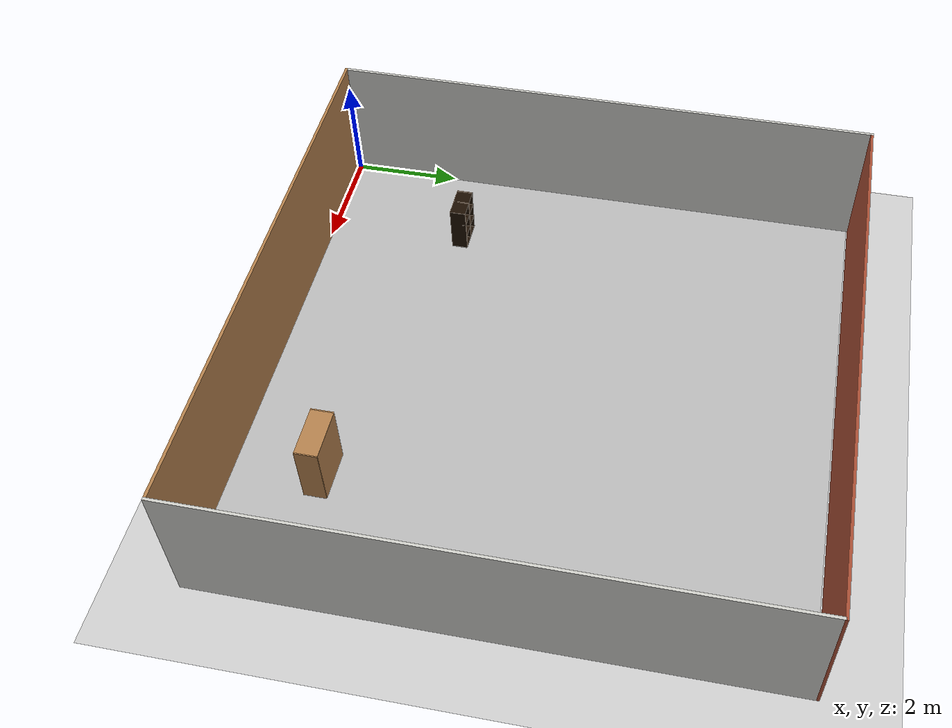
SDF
<sdf version="1.6">
 <world name="default">
  <light name="sun" type="directional">
   <pose>0 0 10 0 -0 0</pose>
   <diffuse>0.8 0.8 0.8 1</diffuse>
   <specular>0.1 0.1 0.1 1</specular>
   <attenuation>
    <range>1000</range>
    <constant>0.9</constant>
    <linear>0.01</linear>
    <quadratic>0.001</quadratic>
   </attenuation>
   <direction>-0.5 0.5 -1</direction>
  </light>
  <model name="ground_plane">
   <static>1</static>
   <link name="link">
    <collision name="collision">
     <geometry><plane><normal>0 0 1</normal><size>100 100</size></plane></geometry>
     <surface><friction><ode><mu>100</mu><mu2>50</mu2></ode></friction></surface>
    </collision>
    <visual name="visual">
     <cast_shadows>0</cast_shadows>
     <geometry><plane><normal>0 0 1</normal><size>100 100</size></plane></geometry>
     <material>
      <script><uri>file://media/materials/scripts/gazebo.material</uri><name>Gazebo/Grey</name></script>
     </material>
    </visual>
   </link>
  </model>
  <gravity>0 0 -9.8</gravity>
  <magnetic_field>6e-06 2.3e-05 -4.2e-05</magnetic_field>
  <atmosphere type="adiabatic"/>
  <physics name="default_physics" default="0" type="ode">
   <max_step_size>0.01</max_step_size>
   <real_time_factor>1</real_time_factor>
   <real_time_update_rate>400</real_time_update_rate>
  </physics>
  <scene><ambient>0.4 0.4 0.4 1</ambient><background>0.7 0.7 0.7 1</background><shadows>1</shadows></scene>
  <spherical_coordinates>
   <surface_model>EARTH_WGS84</surface_model>
   <latitude_deg>0</latitude_deg>
   <longitude_deg>0</longitude_deg>
   <elevation>0</elevation>
   <heading_deg>0</heading_deg>
  </spherical_coordinates>
  <model name="6_Cube_StorageE_0">
   <link name="Wall_0">
    <pose>0 0 0.01 0 -0 0</pose>
    <inertial>
     <mass>1.6201</mass>
     <inertia><ixx>0.0119</ixx><iyy>0.0631</iyy><izz>0.0513</izz><ixy>0</ixy><ixz>0</ixz><iyz>0</iyz></inertia>
    </inertial>
    <collision name="Wall_0_Collision"><geometry><box><size>0.616 0.296 0.02</size></box></geometry></collision>
    <visual name="Wall_0_Visual">
     <geometry><box><size>0.616 0.296 0.02</size></box></geometry>
     <material>
      <script><uri>file://media/materials/scripts/gazebo.material</uri><name>Gazebo/Grey</name></script>
      <ambient>0.105882 0.0509804 0 1</ambient>
     </material>
    </visual>
   </link>
   <joint name="0_2" type="fixed">
    <pose>-0.308 0 0 0 -0 0</pose>
    <parent>Wall_2</parent>
    <child>Wall_0</child>
    <axis>
     <xyz>1 0 0</xyz>
     <use_parent_model_frame>0</use_parent_model_frame>
     <limit><lower>-1e+16</lower><upper>1e+16</upper></limit>
    </axis>
   </joint>
   <joint name="0_12" type="fixed">
    <parent>Wall_12</parent>
    <child>Wall_0</child>
    <axis>
     <xyz>0 0 1</xyz>
     <use_parent_model_frame>0</use_parent_model_frame>
     <limit><lower>-1e+16</lower><upper>1e+16</upper></limit>
    </axis>
   </joint>
   <joint name="0_4" type="fixed">
    <pose>0.308 0 0 0 -0 0</pose>
    <parent>Wall_4</parent>
    <child>Wall_0</child>
    <axis>
     <xyz>1 0 0</xyz>
     <use_parent_model_frame>0</use_parent_model_frame>
     <limit><lower>-1e+16</lower><upper>1e+16</upper></limit>
    </axis>
   </joint>
   <link name="Wall_10">
    <pose>0 0 0.61 0 -0 0</pose>
    <inertial>
     <mass>1.6201</mass>
     <inertia><ixx>0.0119</ixx><iyy>0.0631</iyy><izz>0.0513</izz><ixy>0</ixy><ixz>0</ixz><iyz>0</iyz></inertia>
    </inertial>
    <collision name="Wall_10_Collision"><geometry><box><size>0.616 0.296 0.02</size></box></geometry></collision>
    <visual name="Wall_10_Visual">
     <geometry><box><size>0.616 0.296 0.02</size></box></geometry>
     <material>
      <script><uri>file://media/materials/scripts/gazebo.material</uri><name>Gazebo/Grey</name></script>
      <ambient>0.105882 0.0509804 0 1</ambient>
     </material>
    </visual>
   </link>
   <joint name="10_2" type="fixed">
    <pose>-0.308 0 0 0 -0 0</pose>
    <parent>Wall_2</parent>
    <child>Wall_10</child>
    <axis>
     <xyz>1 0 0</xyz>
     <use_parent_model_frame>0</use_parent_model_frame>
     <limit><lower>-1e+16</lower><upper>1e+16</upper></limit>
    </axis>
   </joint>
   <joint name="10_12" type="fixed">
    <parent>Wall_12</parent>
    <child>Wall_10</child>
    <axis>
     <xyz>0 0 1</xyz>
     <use_parent_model_frame>0</use_parent_model_frame>
     <limit><lower>-1e+16</lower><upper>1e+16</upper></limit>
    </axis>
   </joint>
   <joint name="10_4" type="fixed">
    <pose>0.308 0 0 0 -0 0</pose>
    <parent>Wall_4</parent>
    <child>Wall_10</child>
    <axis>
     <xyz>1 0 0</xyz>
     <use_parent_model_frame>0</use_parent_model_frame>
     <limit><lower>-1e+16</lower><upper>1e+16</upper></limit>
    </axis>
   </joint>
   <link name="Wall_12">
    <pose>0 0 0.4575 0 -0 0</pose>
    <inertial>
     <mass>2.4065</mass>
     <inertia><ixx>0.0177</ixx><iyy>0.1855</iyy><izz>0.168</izz><ixy>0</ixy><ixz>0</ixz><iyz>0</iyz></inertia>
    </inertial>
    <collision name="Wall_12_Collision"><geometry><box><size>0.02 0.296 0.915</size></box></geometry></collision>
    <visual name="Wall_12_Visual">
     <geometry><box><size>0.02 0.296 0.915</size></box></geometry>
     <material>
      <script><uri>file://media/materials/scripts/gazebo.material</uri><name>Gazebo/Grey</name></script>
      <ambient>0.105882 0.0509804 0 1</ambient>
     </material>
    </visual>
   </link>
   <link name="Wall_2">
    <pose>-0.298 0 0.4575 0 -0 0</pose>
    <inertial>
     <mass>2.4065</mass>
     <inertia><ixx>0.0177</ixx><iyy>0.1855</iyy><izz>0.168</izz><ixy>0</ixy><ixz>0</ixz><iyz>0</iyz></inertia>
    </inertial>
    <collision name="Wall_2_Collision"><geometry><box><size>0.02 0.296 0.915</size></box></geometry></collision>
    <visual name="Wall_2_Visual">
     <geometry><box><size>0.02 0.296 0.915</size></box></geometry>
     <material>
      <script><uri>file://media/materials/scripts/gazebo.material</uri><name>Gazebo/Grey</name></script>
      <ambient>0.105882 0.0509804 0 1</ambient>
     </material>
    </visual>
   </link>
   <link name="Wall_4">
    <pose>0.298 0 0.4575 0 -0 0</pose>
    <inertial>
     <mass>2.4065</mass>
     <inertia><ixx>0.0177</ixx><iyy>0.1855</iyy><izz>0.168</izz><ixy>0</ixy><ixz>0</ixz><iyz>0</iyz></inertia>
    </inertial>
    <collision name="Wall_4_Collision"><geometry><box><size>0.02 0.296 0.915</size></box></geometry></collision>
    <visual name="Wall_4_Visual">
     <geometry><box><size>0.02 0.296 0.915</size></box></geometry>
     <material>
      <script><uri>file://media/materials/scripts/gazebo.material</uri><name>Gazebo/Grey</name></script>
      <ambient>0.105882 0.0509804 0 1</ambient>
     </material>
    </visual>
   </link>
   <link name="Wall_6">
    <pose>0 0 0.905 0 -0 0</pose>
    <inertial>
     <mass>1.6201</mass>
     <inertia><ixx>0.0119</ixx><iyy>0.0631</iyy><izz>0.0513</izz><ixy>0</ixy><ixz>0</ixz><iyz>0</iyz></inertia>
    </inertial>
    <collision name="Wall_6_Collision"><geometry><box><size>0.616 0.296 0.02</size></box></geometry></collision>
    <visual name="Wall_6_Visual">
     <geometry><box><size>0.616 0.296 0.02</size></box></geometry>
     <material>
      <script><uri>file://media/materials/scripts/gazebo.material</uri><name>Gazebo/Grey</name></script>
      <ambient>0.105882 0.0509804 0 1</ambient>
     </material>
    </visual>
   </link>
   <joint name="6_2" type="fixed">
    <pose>-0.308 0 0 0 -0 0</pose>
    <parent>Wall_2</parent>
    <child>Wall_6</child>
    <axis>
     <xyz>2 0 0</xyz>
     <use_parent_model_frame>0</use_parent_model_frame>
     <limit><lower>-1e+16</lower><upper>1e+16</upper></limit>
    </axis>
   </joint>
   <joint name="6_12" type="fixed">
    <parent>Wall_12</parent>
    <child>Wall_6</child>
    <axis>
     <xyz>0 0 1</xyz>
     <use_parent_model_frame>0</use_parent_model_frame>
     <limit><lower>-1e+16</lower><upper>1e+16</upper></limit>
    </axis>
   </joint>
   <joint name="6_4" type="fixed">
    <pose>0.308 0 0 0 -0 0</pose>
    <parent>Wall_4</parent>
    <child>Wall_6</child>
    <axis>
     <xyz>1 0 0</xyz>
     <use_parent_model_frame>0</use_parent_model_frame>
     <limit><lower>-1e+16</lower><upper>1e+16</upper></limit>
    </axis>
   </joint>
   <link name="Wall_8">
    <pose>0 0 0.305 0 -0 0</pose>
    <inertial>
     <mass>1.6201</mass>
     <inertia><ixx>0.0119</ixx><iyy>0.0631</iyy><izz>0.0513</izz><ixy>0</ixy><ixz>0</ixz><iyz>0</iyz></inertia>
    </inertial>
    <collision name="Wall_8_Collision"><geometry><box><size>0.616 0.296 0.02</size></box></geometry></collision>
    <visual name="Wall_8_Visual">
     <geometry><box><size>0.616 0.296 0.02</size></box></geometry>
     <material>
      <script><uri>file://media/materials/scripts/gazebo.material</uri><name>Gazebo/Grey</name></script>
      <ambient>0.105882 0.0509804 0 1</ambient>
     </material>
    </visual>
   </link>
   <joint name="8_2" type="fixed">
    <pose>-0.308 0 0 0 -0 0</pose>
    <parent>Wall_2</parent>
    <child>Wall_8</child>
    <axis>
     <xyz>1 0 0</xyz>
     <use_parent_model_frame>0</use_parent_model_frame>
     <limit><lower>-1e+16</lower><upper>1e+16</upper></limit>
    </axis>
   </joint>
   <joint name="8_12" type="fixed">
    <parent>Wall_12</parent>
    <child>Wall_8</child>
    <axis>
     <xyz>0 0 1</xyz>
     <use_parent_model_frame>0</use_parent_model_frame>
     <limit><lower>-1e+16</lower><upper>1e+16</upper></limit>
    </axis>
   </joint>
   <joint name="8_4" type="fixed">
    <pose>0.308 0 0 0 -0 0</pose>
    <parent>Wall_4</parent>
    <child>Wall_8</child>
    <axis>
     <xyz>1 0 0</xyz>
     <use_parent_model_frame>0</use_parent_model_frame>
     <limit><lower>-1e+16</lower><upper>1e+16</upper></limit>
    </axis>
   </joint>
   <static>1</static>
   <pose>1.57975 2.56292 0 0 -0 0</pose>
  </model>
  <model name="bookshelf">
   <static>1</static>
   <link name="link">
    <inertial><mass>1</mass></inertial>
    <collision name="back">
     <pose>0 0.005 0.6 0 -0 0</pose>
     <geometry><box><size>0.9 0.01 1.2</size></box></geometry>
    </collision>
    <visual name="visual1">
     <pose>0 0.005 0.6 0 -0 0</pose>
     <geometry><box><size>0.9 0.01 1.2</size></box></geometry>
     <material>
      <script><uri>file://media/materials/scripts/gazebo.material</uri><name>Gazebo/Wood</name></script>
     </material>
    </visual>
    <collision name="left_side">
     <pose>0.45 -0.195 0.6 0 -0 0</pose>
     <geometry><box><size>0.02 0.4 1.2</size></box></geometry>
    </collision>
    <visual name="visual2">
     <pose>0.45 -0.195 0.6 0 -0 0</pose>
     <geometry><box><size>0.02 0.4 1.2</size></box></geometry>
     <material>
      <script><uri>file://media/materials/scripts/gazebo.material</uri><name>Gazebo/Wood</name></script>
     </material>
    </visual>
    <collision name="right_side">
     <pose>-0.45 -0.195 0.6 0 -0 0</pose>
     <geometry><box><size>0.02 0.4 1.2</size></box></geometry>
    </collision>
    <visual name="visual3">
     <pose>-0.45 -0.195 0.6 0 -0 0</pose>
     <geometry><box><size>0.02 0.4 1.2</size></box></geometry>
     <material>
      <script><uri>file://media/materials/scripts/gazebo.material</uri><name>Gazebo/Wood</name></script>
     </material>
    </visual>
    <collision name="bottom">
     <pose>0 -0.195 0.03 0 -0 0</pose>
     <geometry><box><size>0.88 0.4 0.06</size></box></geometry>
    </collision>
    <visual name="visual4">
     <pose>0 -0.195 0.03 0 -0 0</pose>
     <geometry><box><size>0.88 0.4 0.06</size></box></geometry>
     <material>
      <script><uri>file://media/materials/scripts/gazebo.material</uri><name>Gazebo/Wood</name></script>
     </material>
    </visual>
    <collision name="top">
     <pose>0 -0.195 1.19 0 -0 0</pose>
     <geometry><box><size>0.88 0.4 0.02</size></box></geometry>
    </collision>
    <visual name="visual5">
     <pose>0 -0.195 1.19 0 -0 0</pose>
     <geometry><box><size>0.88 0.4 0.02</size></box></geometry>
     <material>
      <script><uri>file://media/materials/scripts/gazebo.material</uri><name>Gazebo/Wood</name></script>
     </material>
    </visual>
    <collision name="low_shelf">
     <pose>0 -0.195 0.43 0 -0 0</pose>
     <geometry><box><size>0.88 0.4 0.02</size></box></geometry>
    </collision>
    <visual name="visual6">
     <pose>0 -0.195 0.43 0 -0 0</pose>
     <geometry><box><size>0.88 0.4 0.02</size></box></geometry>
     <material>
      <script><uri>file://media/materials/scripts/gazebo.material</uri><name>Gazebo/Wood</name></script>
     </material>
    </visual>
    <collision name="high_shelf">
     <pose>0 -0.195 0.8 0 -0 0</pose>
     <geometry><box><size>0.88 0.4 0.02</size></box></geometry>
    </collision>
    <visual name="visual7">
     <pose>0 -0.195 0.8 0 -0 0</pose>
     <geometry><box><size>0.88 0.4 0.02</size></box></geometry>
     <material>
      <script><uri>file://media/materials/scripts/gazebo.material</uri><name>Gazebo/Wood</name></script>
     </material>
    </visual>
   </link>
   <pose>7.53701 1.76023 0 0 -0 0</pose>
  </model>
  <model name="Floor_room1_0">
   <link name="main">
    <pose>0 0 0.01 0 -0 0</pose>
    <collision name="main_Collision">
     <geometry><box><size>10 10 0.001</size></box></geometry>
     <surface><friction><ode><mu>100</mu><mu2>100</mu2></ode></friction></surface>
    </collision>
    <visual name="main_Visual">
     <geometry><box><size>10 10 0.001</size></box></geometry>
     <material>
      <script>
       <uri>file:///home/linhai/.gazebo/models/Floor_room1/materials/scripts</uri>
       <uri>file:///home/linhai/.gazebo/models/Floor_room1/materials/textures</uri>
       <name>floor_room1</name>
      </script>
     </material>
    </visual>
   </link>
   <static>1</static>
   <pose>4.99995 4.9498 0 0 -0 0</pose>
  </model>
  <model name="10x10_4_colour_walls">
   <pose>5 5 0 0 -0 0</pose>
   <link name="Wall_2">
    <collision name="Wall_2_Collision">
     <geometry><box><size>10.05 0.05 2.5</size></box></geometry>
     <pose>0 0 1.25 0 -0 0</pose>
    </collision>
    <visual name="Wall_2_Visual">
     <pose>0 0 1.25 0 -0 0</pose>
     <geometry><box><size>10.05 0.05 2.5</size></box></geometry>
     <material>
      <script><uri>file://media/materials/scripts/gazebo.material</uri><name>Gazebo/CeilingTiled</name></script>
      <ambient>1 1 1 1</ambient>
     </material>
    </visual>
    <pose>-5 0 0 0 0 -1.5708</pose>
   </link>
   <link name="Wall_3">
    <collision name="Wall_3_Collision">
     <geometry><box><size>10.05 0.05 2.5</size></box></geometry>
     <pose>0 0 1.25 0 -0 0</pose>
    </collision>
    <visual name="Wall_3_Visual">
     <pose>0 0 1.25 0 -0 0</pose>
     <geometry><box><size>10.05 0.05 2.5</size></box></geometry>
     <material>
      <script><uri>file://media/materials/scripts/gazebo.material</uri><name>Gazebo/Wood</name></script>
      <ambient>1 1 1 1</ambient>
     </material>
    </visual>
    <pose>0 -5 0 0 -0 0</pose>
   </link>
   <link name="Wall_4">
    <collision name="Wall_4_Collision">
     <geometry><box><size>10.05 0.05 2.5</size></box></geometry>
     <pose>0 0 1.25 0 -0 0</pose>
    </collision>
    <visual name="Wall_4_Visual">
     <pose>0 0 1.25 0 -0 0</pose>
     <geometry><box><size>10.05 0.05 2.5</size></box></geometry>
     <material>
      <script><uri>file://media/materials/scripts/gazebo.material</uri><name>Gazebo/CeilingTiled</name></script>
      <ambient>0.435294 0.796078 0.67451 1</ambient>
     </material>
    </visual>
    <pose>5 0 0 0 -0 1.5708</pose>
   </link>
   <link name="Wall_5">
    <collision name="Wall_5_Collision">
     <geometry><box><size>10.05 0.05 2.5</size></box></geometry>
     <pose>0 0 1.25 0 -0 0</pose>
    </collision>
    <visual name="Wall_5_Visual">
     <pose>0 0 1.25 0 -0 0</pose>
     <geometry><box><size>10.05 0.05 2.5</size></box></geometry>
     <material>
      <script><uri>file://media/materials/scripts/gazebo.material</uri><name>Gazebo/Bricks</name></script>
      <ambient>1 1 1 1</ambient>
     </material>
    </visual>
    <pose>0 5 0 0 -0 3.14159</pose>
   </link>
   <static>1</static>
  </model>
 </world>
</sdf>
